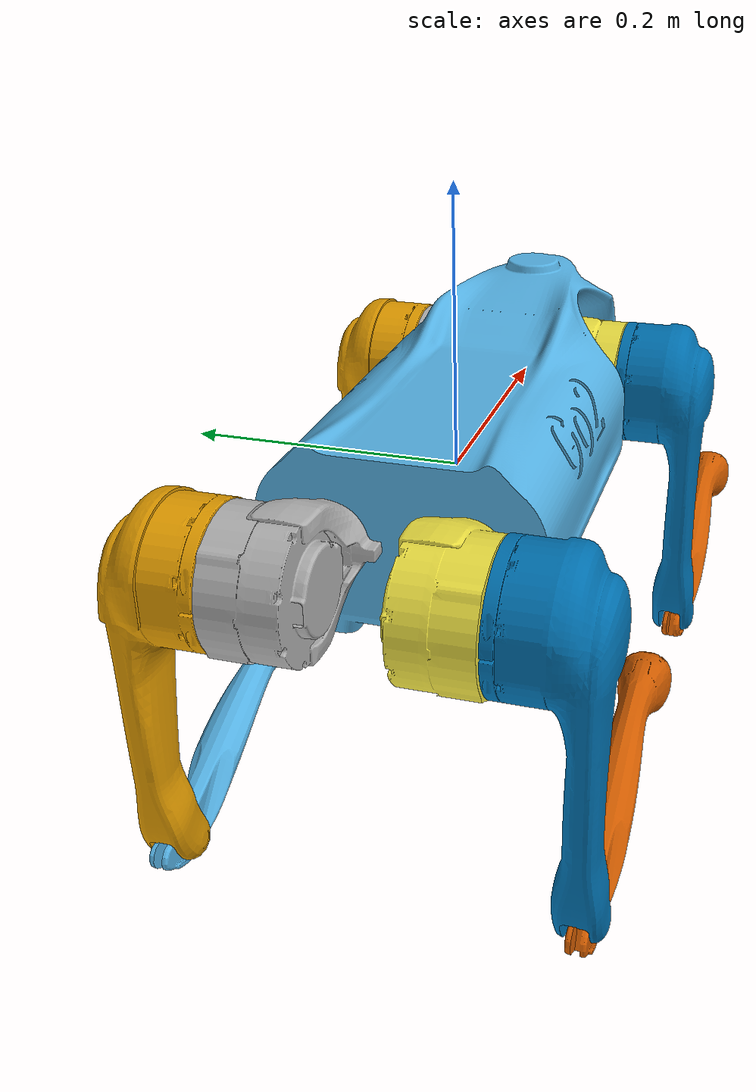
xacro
<?xml version="1.0"?>

<robot name="go2" xmlns:xacro="http://www.ros.org/wiki/xacro">

    <xacro:arg name="DEBUG" default="false"/>
    <!-- ROS2: control loop period, forwarded to gazebo.xacro (P3D / IMU rates). -->
    <xacro:arg name="task_period" default="0.004"/>
    <!-- Declared for launch parity with go1 (upload.launch.py forwards it).
         The go2 leg macro has no force-sensor variant, so this is a no-op. -->
    <xacro:arg name="load_force_sensors" default="false"/>

    <xacro:include filename="$(find go2_description)/urdfs/const.xacro"/>
    <xacro:include filename="$(find go2_description)/urdfs/materials.xacro"/>
    <xacro:include filename="$(find go2_description)/urdfs/leg.xacro"/>
    <xacro:include filename="$(find go2_description)/gazebo/gazebo.xacro">
        <xacro:arg name="task_period" value="$(arg task_period)"/>
    </xacro:include>
    <xacro:include filename="$(find go2_description)/urdfs/ros2_control.xacro"/>
    <xacro:go2_ros2_control/>

    <link name="base_link" />

    <joint name="floating_base" type="fixed">
        <origin rpy="0 0 0" xyz="0 0 0"/>
        <parent link="base_link"/>
        <child link="trunk"/>
    </joint>

    <link name="trunk">
        <visual>
            <origin rpy="0 0 0" xyz="0 0 0"/>
            <geometry>
                <mesh filename="package://go2_description/meshes/trunk.stl" scale="1 1 1"/>
            </geometry>
        </visual>
        <collision>
            <origin rpy="0 0 0" xyz="0 0 0"/>
            <geometry>
                <box size="${trunk_length} ${trunk_width} ${trunk_height}"/>
            </geometry>
        </collision>
        <inertial>
            <origin rpy="0 0 0" xyz="${trunk_com_x} ${trunk_com_y} ${trunk_com_z}"/>
            <mass value="${trunk_mass}"/>
            <inertia
                ixx="${trunk_ixx}" ixy="${trunk_ixy}" ixz="${trunk_ixz}"
                iyy="${trunk_iyy}" iyz="${trunk_iyz}"
                izz="${trunk_izz}"/>
        </inertial>
    </link>

    <joint name="imu_joint" type="fixed">
        <parent link="trunk"/>
        <child link="imu_link"/>
        <origin rpy="0 0 0" xyz="-0.01592 -0.06659 -0.00617"/>
    </joint>

    <link name="imu_link">
        <inertial>
            <mass value="0.001"/>
            <origin rpy="0 0 0" xyz="0 0 0"/>
            <inertia ixx="0.0001" ixy="0" ixz="0" iyy="0.0001" iyz="0" izz="0.0001"/>
        </inertial>
        <visual>
            <origin rpy="0 0 0" xyz="0 0 0"/>
            <geometry>
                <box size="0.001 0.001 0.001"/>
            </geometry>
        </visual>
        <collision>
            <origin rpy="0 0 0" xyz="0 0 0"/>
            <geometry>
                <box size=".001 .001 .001"/>
            </geometry>
        </collision>
    </link>

    <xacro:leg name="rf" mirror="-1" mirror_dae= "False" front_hind="1"  front_hind_dae="True"  />
    <xacro:leg name="lf" mirror="1"  mirror_dae="True"   front_hind="1"  front_hind_dae="True"  />
    <xacro:leg name="rh" mirror="-1" mirror_dae="False"  front_hind="-1" front_hind_dae="False" />
    <xacro:leg name="lh" mirror="1"  mirror_dae="True"   front_hind="-1" front_hind_dae="False" />
</robot>

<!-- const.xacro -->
<robot xmlns:xacro="http://www.ros.org/wiki/xacro">

    <!-- Constants for robot dimensions -->
    <xacro:property name="PI" value="3.1415926535897931"/>
    <xacro:property name="stick_mass" value="0.00001"/>

    <!-- simplified collision value -->
    <xacro:property name="trunk_width" value="0.0935"/>
    <xacro:property name="trunk_length" value="0.3762"/>
    <xacro:property name="trunk_height" value="0.114"/>
    <xacro:property name="hip_radius" value="0.046"/>
    <xacro:property name="hip_length" value="0.04"/>
    <xacro:property name="upperleg_shoulder_radius" value="0.041"/>
    <xacro:property name="upperleg_shoulder_length" value="0.032"/>
    <xacro:property name="upperleg_width" value="0.0245"/>
    <xacro:property name="upperleg_height" value="0.034"/>
    <xacro:property name="lowerleg_width" value="0.016"/>
    <xacro:property name="lowerleg_height" value="0.016"/>
    <xacro:property name="foot_radius" value="0.02"/>
    <xacro:property name="stick_radius" value="0.01"/>
    <xacro:property name="stick_length" value="0.2"/>

    <!-- kinematic value -->
    <xacro:property name="upperleg_offset" value="0.0955"/>
    <xacro:property name="upperleg_length" value="0.213"/>
    <xacro:property name="lowerleg_length" value="0.213"/>

    <!-- leg offset from trunk center value -->
    <xacro:property name="leg_offset_x" value="0.1934"/>
    <xacro:property name="leg_offset_y" value="0.0465"/>
    <xacro:property name="hip_offset" value="0.0955"/>

    <!-- offset of link locations (left front) -->
    <xacro:property name="hip_offset_x" value="0.1934"/>
    <xacro:property name="hip_offset_y" value="0.0465"/>
    <xacro:property name="hip_offset_z" value="0.0"/>

    <xacro:property name="upperleg_offset_x" value="0"/>
    <xacro:property name="upperleg_offset_y" value="0.0955"/>
    <xacro:property name="upperleg_offset_z" value="0.0"/>

    <xacro:property name="lowerleg_offset_x" value="0.0"/>
    <xacro:property name="lowerleg_offset_y" value="0.0"/>
    <xacro:property name="lowerleg_offset_z" value="-0.213"/>

    <!-- joint limits -->
    <xacro:property name="damping" value="0.0"/>
    <xacro:property name="friction" value="0.0"/>
    <xacro:property name="haa_max" value="1.0472"/>
    <xacro:property name="haa_min" value="-1.0472"/>
    <xacro:property name="haa_velocity_max" value="30.1"/>
    <xacro:property name="haa_torque_max" value="23.7"/>
    <xacro:property name="hfe_max" value="3.4907"/>
    <xacro:property name="hfe_min" value="-1.5708"/>
    <xacro:property name="hfe_velocity_max" value="30.1"/>
    <xacro:property name="hfe_torque_max" value="23.7"/>
    <xacro:property name="kfe_max" value="-0.83776"/>
    <xacro:property name="kfe_min" value="-2.7227"/>
    <xacro:property name="kfe_velocity_max" value="20.06"/>
    <xacro:property name="kfe_torque_max" value="35.55"/>

    <!-- dynamics inertial value -->
    <!-- trunk -->
    <xacro:property name="trunk_mass" value="6.921"/>
    <xacro:property name="trunk_com_x" value="0.021112"/>
    <xacro:property name="trunk_com_y" value="0.00"/>
    <xacro:property name="trunk_com_z" value="-0.005366"/>
    <xacro:property name="trunk_ixx" value="0.02448"/>
    <xacro:property name="trunk_ixy" value="0.00012166"/>
    <xacro:property name="trunk_ixz" value="0.0014849"/>
    <xacro:property name="trunk_iyy" value="0.098077"/>
    <xacro:property name="trunk_iyz" value="-3.12E-05"/>
    <xacro:property name="trunk_izz" value="0.107"/>

    <!-- hip (left front) -->
    <xacro:property name="hip_mass" value="0.678"/>
    <xacro:property name="hip_com_x" value="-0.0054"/>
    <xacro:property name="hip_com_y" value="0.00194"/>
    <xacro:property name="hip_com_z" value="-0.000105"/>
    <xacro:property name="hip_ixx" value="0.00048"/>
    <xacro:property name="hip_ixy" value="-3.01E-06"/>
    <xacro:property name="hip_ixz" value="1.11E-06"/>
    <xacro:property name="hip_iyy" value="0.000884"/>
    <xacro:property name="hip_iyz" value="-1.42E-06"/>
    <xacro:property name="hip_izz" value="0.000596"/>

    <!-- upperleg -->
    <xacro:property name="upperleg_mass" value="1.152"/>
    <xacro:property name="upperleg_com_x" value="-0.00374"/>
    <xacro:property name="upperleg_com_y" value="-0.0223"/>
    <xacro:property name="upperleg_com_z" value="-0.0327"/>
    <xacro:property name="upperleg_ixx" value="0.00584"/>
    <xacro:property name="upperleg_ixy" value="8.72E-05"/>
    <xacro:property name="upperleg_ixz" value="-0.000289"/>
    <xacro:property name="upperleg_iyy" value="0.0058"/>
    <xacro:property name="upperleg_iyz" value="0.000808"/>
    <xacro:property name="upperleg_izz" value="0.00103"/>

    <!-- lowerleg -->
    <xacro:property name="lowerleg_mass" value="0.154"/>
    <xacro:property name="lowerleg_com_x" value="0.00548"/>
    <xacro:property name="lowerleg_com_y" value="-0.000975"/>
    <xacro:property name="lowerleg_com_z" value="-0.115"/>
    <xacro:property name="lowerleg_ixx" value="0.00108"/>
    <xacro:property name="lowerleg_ixy" value="3.4E-07"/>
    <xacro:property name="lowerleg_ixz" value="1.72E-05"/>
    <xacro:property name="lowerleg_iyy" value="0.0011"/>
    <xacro:property name="lowerleg_iyz" value="8.28E-06"/>
    <xacro:property name="lowerleg_izz" value="3.29E-05"/>

    <!-- foot -->
    <xacro:property name="foot_mass" value="0.06"/>

</robot>

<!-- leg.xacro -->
<robot xmlns:xacro="http://www.ros.org/wiki/xacro">

    <!-- Things that are needed only for Gazebo (not the physical robot). These include sensor and controller plugin specifications -->
    <xacro:include filename="$(find go2_description)/urdfs/leg.transmission.xacro"/>
    <xacro:include filename="$(find go2_description)/urdfs/leg.gazebo.xacro"/>

    <xacro:macro name="leg" params="name mirror mirror_dae front_hind front_hind_dae">

        <joint name="${name}_haa_joint" type="revolute">
            <xacro:if value="${(mirror_dae == False) and (front_hind_dae == True)}">
                <origin rpy="0 0 0" xyz="${leg_offset_x} ${-leg_offset_y} 0"/>
            </xacro:if>
            <xacro:if value="${(mirror_dae == True) and (front_hind_dae == True)}">
                <origin rpy="0 0 0" xyz="${leg_offset_x} ${leg_offset_y} 0"/>
            </xacro:if>
            <xacro:if value="${(mirror_dae == False) and (front_hind_dae == False)}">
                <origin rpy="0 0 0" xyz="${-leg_offset_x} ${-leg_offset_y} 0"/>
            </xacro:if>
            <xacro:if value="${(mirror_dae == True) and (front_hind_dae == False)}">
                <origin rpy="0 0 0" xyz="${-leg_offset_x} ${leg_offset_y} 0"/>
            </xacro:if>
            <parent link="trunk"/>
            <child link="${name}_hip"/>
            <axis xyz="1 0 0"/>
            <dynamics damping="${damping}" friction="${friction}"/>
            <xacro:if value="${(mirror_dae == True)}">
                <limit effort="${haa_torque_max}" velocity="${haa_velocity_max}" lower="${haa_min}" upper="${haa_max}"/>
            </xacro:if>
            <xacro:if value="${(mirror_dae == False)}">
                <limit effort="${haa_torque_max}" velocity="${haa_velocity_max}" lower="${-haa_max}" upper="${-haa_min}"/>
            </xacro:if>
        </joint>

        <link name="${name}_hip">
            <visual>
                <xacro:if value="${(mirror_dae == True) and (front_hind_dae == True)}">
                    <origin rpy="0 0 0" xyz="0 0 0"/>
                </xacro:if>
                <xacro:if value="${(mirror_dae == False) and (front_hind_dae == True)}">
                    <origin rpy="${PI} 0 0" xyz="0 0 0"/>
                </xacro:if>
                <xacro:if value="${(mirror_dae == True) and (front_hind_dae == False)}">
                    <origin rpy="0 ${PI} 0" xyz="0 0 0"/>
                </xacro:if>
                <xacro:if value="${(mirror_dae == False) and (front_hind_dae == False)}">
                    <origin rpy="${PI} ${PI} 0" xyz="0 0 0"/>
                </xacro:if>
                <geometry>
                    <mesh filename="package://go2_description/meshes/hip.stl" scale="1 1 1"/>
                </geometry>
            </visual>
            <collision>
                <origin rpy="${PI/2.0} 0 0" xyz="0 ${hip_offset*mirror} 0"/>
                <geometry>
                    <cylinder length="${hip_length}" radius="${hip_radius}"/>
                </geometry>
            </collision>
            <inertial>
                <origin rpy="0 0 0" xyz="${hip_com_x*front_hind} ${hip_com_y*mirror} ${hip_com_z}"/>
                <mass value="${hip_mass}"/>
                <inertia
                    ixx="${hip_ixx}" ixy="${hip_ixy*mirror*front_hind}" ixz="${hip_ixz*front_hind}"
                    iyy="${hip_iyy}" iyz="${hip_iyz*mirror}"
                    izz="${hip_izz}"/>
            </inertial>
        </link>

        <joint name="${name}_hfe_joint" type="revolute">
            <origin rpy="0 0 0" xyz="0 ${upperleg_offset*mirror} 0"/>
            <parent link="${name}_hip"/>
            <child link="${name}_upperleg"/>
            <axis xyz="0 1 0"/>
            <dynamics damping="${damping}" friction="${friction}"/>
            <limit effort="${hfe_torque_max}" velocity="${hfe_velocity_max}" lower="${hfe_min}" upper="${hfe_max}"/>
        </joint>

        <link name="${name}_upperleg">
            <visual>
                <origin rpy="0 0 0" xyz="0 0 0"/>
                <geometry>
                    <xacro:if value="${mirror_dae == True}">
                        <mesh filename="package://go2_description/meshes/upperleg.stl" scale="1 1 1"/>
                    </xacro:if>
                    <xacro:if value="${mirror_dae == False}">
                        <mesh filename="package://go2_description/meshes/upperleg_mirror.stl" scale="1 1 1"/>
                    </xacro:if>
                </geometry>
            </visual>
            <collision>
                <origin rpy="0 ${PI/2.0} 0" xyz="0 0 ${-upperleg_length/2.0}"/>
                <geometry>
                    <box size="${upperleg_length} ${upperleg_width} ${upperleg_height}"/>
                </geometry>
            </collision>
            <inertial>
                <origin rpy="0 0 0" xyz="${upperleg_com_x} ${upperleg_com_y*mirror} ${upperleg_com_z}"/>
                <mass value="${upperleg_mass}"/>
                <inertia
                    ixx="${upperleg_ixx}" ixy="${upperleg_ixy*mirror}" ixz="${upperleg_ixz}"
                    iyy="${upperleg_iyy}" iyz="${upperleg_iyz*mirror}"
                    izz="${upperleg_izz}"/>
            </inertial>
        </link>

        <joint name="${name}_kfe_joint" type="revolute">
            <origin rpy="0 0 0" xyz="0 0 ${-upperleg_length}"/>
            <parent link="${name}_upperleg"/>
            <child link="${name}_lowerleg"/>
            <axis xyz="0 1 0"/>
            <dynamics damping="${damping}" friction="${friction}"/>
            <limit effort="${kfe_torque_max}" velocity="${kfe_velocity_max}" lower="${kfe_min}" upper="${kfe_max}"/>
        </joint>

        <link name="${name}_lowerleg">
            <visual>
                <origin rpy="0 0 0" xyz="0 0 0"/>
                <geometry>
                    <mesh filename="package://go2_description/meshes/lowerleg.stl" scale="1 1 1"/>
                </geometry>
            </visual>
            <collision>
                <origin rpy="0 ${PI/2.0} 0" xyz="0 0 ${-lowerleg_length/2.0}"/>
                <geometry>
                    <box size="${lowerleg_length} ${lowerleg_width} ${lowerleg_height}"/>
                </geometry>
            </collision>
            <inertial>
                <origin rpy="0 0 0" xyz="${lowerleg_com_x} ${lowerleg_com_y} ${lowerleg_com_z}"/>
                <mass value="${lowerleg_mass}"/>
                <inertia
                    ixx="${lowerleg_ixx}" ixy="${lowerleg_ixy}" ixz="${lowerleg_ixz}"
                    iyy="${lowerleg_iyy}" iyz="${lowerleg_iyz}"
                    izz="${lowerleg_izz}"/>
            </inertial>
        </link>

        <joint name="${name}_foot_fixed" type="fixed">
            <origin rpy="0 0 0" xyz="0 0 ${-(lowerleg_length)}"/>
            <parent link="${name}_lowerleg"/>
            <child link="${name}_foot"/>
        </joint>

        <link name="${name}_foot">
            <visual>
                <origin rpy="0 0 0" xyz="0 0 0"/>
                <geometry>
                    <sphere radius="${foot_radius-0.01}"/>
                </geometry>
            </visual>
            <collision>
                <origin rpy="0 0 0" xyz="0 0 0"/>
                <geometry>
                    <sphere radius="${foot_radius}"/>
                </geometry>
            </collision>
            <inertial>
                <mass value="${foot_mass}"/>
                <inertia
                    ixx="${(2*foot_mass)/5.0*(foot_radius*foot_radius)}" ixy="0.0" ixz="0.0"
                    iyy="${(2*foot_mass)/5.0*(foot_radius*foot_radius)}" iyz="0.0"
                    izz="${(2*foot_mass)/5.0*(foot_radius*foot_radius)}"/>
            </inertial>
        </link>

        <xacro:leg_transmission name="${name}"/>
        <xacro:leg_gazebo name="${name}"/>
    </xacro:macro>
</robot>
